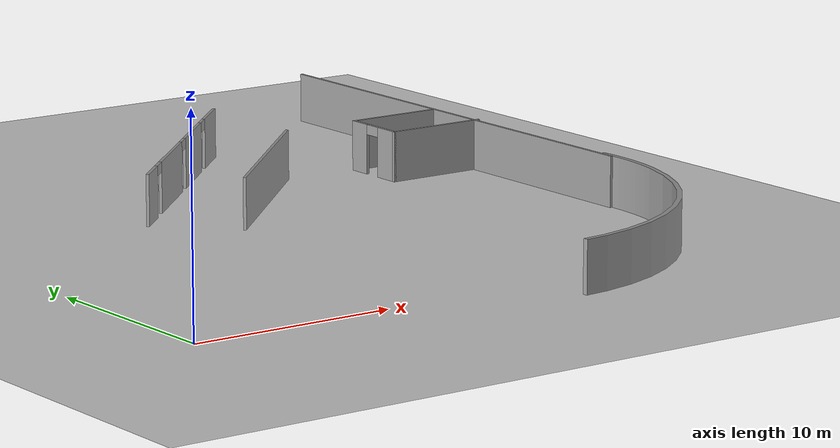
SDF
<sdf version="1.6">
 <world name="default">
  <model name="ground_plane">
   <static>1</static>
   <link name="link">
    <collision name="collision">
     <geometry><plane><normal>0 0 1</normal><size>100 100</size></plane></geometry>
     <surface>
      <contact><collide_bitmask>65535</collide_bitmask></contact>
      <friction><ode><mu>100</mu><mu2>50</mu2></ode></friction>
     </surface>
    </collision>
    <visual name="visual">
     <cast_shadows>0</cast_shadows>
     <geometry><plane><normal>0 0 1</normal><size>100 100</size></plane></geometry>
     <material>
      <script><uri>file://media/materials/scripts/gazebo.material</uri><name>Gazebo/Grey</name></script>
     </material>
    </visual>
   </link>
  </model>
  <model name="Curved_wall_1.25m_clone_0">
   <link name="link_0">
    <inertial>
     <mass>1</mass>
     <inertia>
      <ixx>0.166667</ixx>
      <ixy>0</ixy>
      <ixz>0</ixz>
      <iyy>0.166667</iyy>
      <iyz>0</iyz>
      <izz>0.166667</izz>
     </inertia>
    </inertial>
    <pose>-4.4e-05 -6e-06 0 0 -0 0</pose>
    <visual name="visual">
     <geometry><mesh><uri>meshes/curved wall.dae</uri><scale>1 1 1</scale></mesh></geometry>
     <material>
      <lighting>1</lighting>
      <script><uri>file://media/materials/scripts/gazebo.material</uri><name>Gazebo/Grey</name></script>
      <shader type="pixel"/>
     </material>
    </visual>
    <collision name="collision">
     <geometry><mesh><uri>meshes/curved wall.dae</uri><scale>1 1 1</scale></mesh></geometry>
     <surface>
      <friction>
       <ode><mu>1</mu><mu2>1</mu2><fdir1>0 0 0</fdir1><slip1>0</slip1><slip2>0</slip2></ode>
       <torsional>
        <coefficient>1</coefficient>
        <patch_radius>0</patch_radius>
        <surface_radius>0</surface_radius>
        <use_patch_radius>1</use_patch_radius>
        <ode><slip>0</slip></ode>
       </torsional>
      </friction>
      <bounce><restitution_coefficient>0</restitution_coefficient><threshold>1e+06</threshold></bounce>
      <contact>
       <collide_without_contact>0</collide_without_contact>
       <collide_without_contact_bitmask>1</collide_without_contact_bitmask>
       <collide_bitmask>1</collide_bitmask>
       <ode>
        <soft_cfm>0</soft_cfm>
        <soft_erp>0.2</soft_erp>
        <kp>1e+13</kp>
        <kd>1</kd>
        <max_vel>0.01</max_vel>
        <min_depth>0</min_depth>
       </ode>
       <bullet>
        <split_impulse>1</split_impulse>
        <split_impulse_penetration_threshold>-0.01</split_impulse_penetration_threshold>
        <soft_cfm>0</soft_cfm>
        <soft_erp>0.2</soft_erp>
        <kp>1e+13</kp>
        <kd>1</kd>
       </bullet>
      </contact>
     </surface>
    </collision>
   </link>
   <static>1</static>
   <pose>26.3266 2.14842 1.24993 2.1e-05 -5.6e-05 -1.49215</pose>
  </model>
  <model name="Level_1_with_doors">
   <link name="Wall_34">
    <pose>12.633 -2.43377 0 0 0 -2.35417</pose>
    <visual name="Wall_34_Visual">
     <pose>0 0 1.25 0 -0 0</pose>
     <geometry><box><size>11.1126 0.15 2.5</size></box></geometry>
     <material>
      <script><uri>file://media/materials/scripts/gazebo.material</uri><name>Gazebo/Grey</name></script>
      <ambient>1 1 1 1</ambient>
      <shader type="pixel"/>
     </material>
     <meta><layer>0</layer></meta>
    </visual>
    <collision name="Wall_34_Collision">
     <pose>0 0 1.25 0 -0 0</pose>
     <geometry><box><size>11.1126 0.15 2.5</size></box></geometry>
     <surface>
      <friction>
       <ode><mu>1</mu><mu2>1</mu2><fdir1>0 0 0</fdir1><slip1>0</slip1><slip2>0</slip2></ode>
       <torsional>
        <coefficient>1</coefficient>
        <patch_radius>0</patch_radius>
        <surface_radius>0</surface_radius>
        <use_patch_radius>1</use_patch_radius>
        <ode><slip>0</slip></ode>
       </torsional>
      </friction>
      <bounce><restitution_coefficient>0</restitution_coefficient><threshold>1e+06</threshold></bounce>
      <contact>
       <collide_without_contact>0</collide_without_contact>
       <collide_without_contact_bitmask>1</collide_without_contact_bitmask>
       <collide_bitmask>1</collide_bitmask>
       <ode>
        <soft_cfm>0</soft_cfm>
        <soft_erp>0.2</soft_erp>
        <kp>1e+13</kp>
        <kd>1</kd>
        <max_vel>0.01</max_vel>
        <min_depth>0</min_depth>
       </ode>
       <bullet>
        <split_impulse>1</split_impulse>
        <split_impulse_penetration_threshold>-0.01</split_impulse_penetration_threshold>
        <soft_cfm>0</soft_cfm>
        <soft_erp>0.2</soft_erp>
        <kp>1e+13</kp>
        <kd>1</kd>
       </bullet>
      </contact>
     </surface>
    </collision>
   </link>
   <link name="Wall_36">
    <pose>11.0278 2.45063 0 0 -0 0.785398</pose>
    <visual name="Wall_36_Visual_2">
     <pose>2.43912 0 1.25 0 -0 0</pose>
     <geometry><box><size>3.77284 0.15 2.5</size></box></geometry>
     <material>
      <script><uri>file://media/materials/scripts/gazebo.material</uri><name>Gazebo/Grey</name></script>
      <ambient>1 1 1 1</ambient>
      <shader type="pixel"/>
     </material>
     <meta><layer>0</layer></meta>
    </visual>
    <visual name="Wall_36_Visual_1">
     <pose>-2.69069 0 1.25 0 -0 0</pose>
     <geometry><box><size>4.68677 0.15 2.5</size></box></geometry>
     <material>
      <script><uri>file://media/materials/scripts/gazebo.material</uri><name>Gazebo/Grey</name></script>
      <ambient>1 1 1 1</ambient>
      <shader type="pixel"/>
     </material>
     <meta><layer>0</layer></meta>
    </visual>
    <visual name="Wall_36_Visual_4">
     <pose>-5.48407 0 2.25 0 -0 0</pose>
     <geometry><box><size>0.9 0.15 0.5</size></box></geometry>
     <material>
      <script><uri>file://media/materials/scripts/gazebo.material</uri><name>Gazebo/Grey</name></script>
      <ambient>1 1 1 1</ambient>
      <shader type="pixel"/>
     </material>
     <meta><layer>0</layer></meta>
    </visual>
    <visual name="Wall_36_Visual_3">
     <pose>6.55027 0 1.25 0 -0 0</pose>
     <geometry><box><size>2.64946 0.15 2.5</size></box></geometry>
     <material>
      <script><uri>file://media/materials/scripts/gazebo.material</uri><name>Gazebo/Grey</name></script>
      <ambient>1 1 1 1</ambient>
      <shader type="pixel"/>
     </material>
     <meta><layer>0</layer></meta>
    </visual>
    <visual name="Wall_36_Visual_5">
     <pose>0.102698 0 2.25 0 -0 0</pose>
     <geometry><box><size>0.9 0.15 0.5</size></box></geometry>
     <material>
      <script><uri>file://media/materials/scripts/gazebo.material</uri><name>Gazebo/Grey</name></script>
      <ambient>1 1 1 1</ambient>
      <shader type="pixel"/>
     </material>
     <meta><layer>0</layer></meta>
    </visual>
    <visual name="Wall_36_Visual_6">
     <pose>4.77554 0 2.25 0 -0 0</pose>
     <geometry><box><size>0.9 0.15 0.5</size></box></geometry>
     <material>
      <script><uri>file://media/materials/scripts/gazebo.material</uri><name>Gazebo/Grey</name></script>
      <ambient>1 1 1 1</ambient>
      <shader type="pixel"/>
     </material>
     <meta><layer>0</layer></meta>
    </visual>
    <visual name="Wall_36_Visual_0">
     <pose>-6.90454 0 1.25 0 -0 0</pose>
     <geometry><box><size>1.94093 0.15 2.5</size></box></geometry>
     <material>
      <script><uri>file://media/materials/scripts/gazebo.material</uri><name>Gazebo/Grey</name></script>
      <ambient>1 1 1 1</ambient>
      <shader type="pixel"/>
     </material>
     <meta><layer>0</layer></meta>
    </visual>
    <collision name="Wall_36_Collision_2">
     <pose>2.43912 0 1.25 0 -0 0</pose>
     <geometry><box><size>3.77284 0.15 2.5</size></box></geometry>
     <surface>
      <friction>
       <ode><mu>1</mu><mu2>1</mu2><fdir1>0 0 0</fdir1><slip1>0</slip1><slip2>0</slip2></ode>
       <torsional>
        <coefficient>1</coefficient>
        <patch_radius>0</patch_radius>
        <surface_radius>0</surface_radius>
        <use_patch_radius>1</use_patch_radius>
        <ode><slip>0</slip></ode>
       </torsional>
      </friction>
      <bounce><restitution_coefficient>0</restitution_coefficient><threshold>1e+06</threshold></bounce>
      <contact>
       <collide_without_contact>0</collide_without_contact>
       <collide_without_contact_bitmask>1</collide_without_contact_bitmask>
       <collide_bitmask>1</collide_bitmask>
       <ode>
        <soft_cfm>0</soft_cfm>
        <soft_erp>0.2</soft_erp>
        <kp>1e+13</kp>
        <kd>1</kd>
        <max_vel>0.01</max_vel>
        <min_depth>0</min_depth>
       </ode>
       <bullet>
        <split_impulse>1</split_impulse>
        <split_impulse_penetration_threshold>-0.01</split_impulse_penetration_threshold>
        <soft_cfm>0</soft_cfm>
        <soft_erp>0.2</soft_erp>
        <kp>1e+13</kp>
        <kd>1</kd>
       </bullet>
      </contact>
     </surface>
    </collision>
    <collision name="Wall_36_Collision_0">
     <pose>-6.90454 0 1.25 0 -0 0</pose>
     <geometry><box><size>1.94093 0.15 2.5</size></box></geometry>
     <surface>
      <friction>
       <ode><mu>1</mu><mu2>1</mu2><fdir1>0 0 0</fdir1><slip1>0</slip1><slip2>0</slip2></ode>
       <torsional>
        <coefficient>1</coefficient>
        <patch_radius>0</patch_radius>
        <surface_radius>0</surface_radius>
        <use_patch_radius>1</use_patch_radius>
        <ode><slip>0</slip></ode>
       </torsional>
      </friction>
      <bounce><restitution_coefficient>0</restitution_coefficient><threshold>1e+06</threshold></bounce>
      <contact>
       <collide_without_contact>0</collide_without_contact>
       <collide_without_contact_bitmask>1</collide_without_contact_bitmask>
       <collide_bitmask>1</collide_bitmask>
       <ode>
        <soft_cfm>0</soft_cfm>
        <soft_erp>0.2</soft_erp>
        <kp>1e+13</kp>
        <kd>1</kd>
        <max_vel>0.01</max_vel>
        <min_depth>0</min_depth>
       </ode>
       <bullet>
        <split_impulse>1</split_impulse>
        <split_impulse_penetration_threshold>-0.01</split_impulse_penetration_threshold>
        <soft_cfm>0</soft_cfm>
        <soft_erp>0.2</soft_erp>
        <kp>1e+13</kp>
        <kd>1</kd>
       </bullet>
      </contact>
     </surface>
    </collision>
    <collision name="Wall_36_Collision_1">
     <pose>-2.69069 0 1.25 0 -0 0</pose>
     <geometry><box><size>4.68677 0.15 2.5</size></box></geometry>
     <surface>
      <friction>
       <ode><mu>1</mu><mu2>1</mu2><fdir1>0 0 0</fdir1><slip1>0</slip1><slip2>0</slip2></ode>
       <torsional>
        <coefficient>1</coefficient>
        <patch_radius>0</patch_radius>
        <surface_radius>0</surface_radius>
        <use_patch_radius>1</use_patch_radius>
        <ode><slip>0</slip></ode>
       </torsional>
      </friction>
      <bounce><restitution_coefficient>0</restitution_coefficient><threshold>1e+06</threshold></bounce>
      <contact>
       <collide_without_contact>0</collide_without_contact>
       <collide_without_contact_bitmask>1</collide_without_contact_bitmask>
       <collide_bitmask>1</collide_bitmask>
       <ode>
        <soft_cfm>0</soft_cfm>
        <soft_erp>0.2</soft_erp>
        <kp>1e+13</kp>
        <kd>1</kd>
        <max_vel>0.01</max_vel>
        <min_depth>0</min_depth>
       </ode>
       <bullet>
        <split_impulse>1</split_impulse>
        <split_impulse_penetration_threshold>-0.01</split_impulse_penetration_threshold>
        <soft_cfm>0</soft_cfm>
        <soft_erp>0.2</soft_erp>
        <kp>1e+13</kp>
        <kd>1</kd>
       </bullet>
      </contact>
     </surface>
    </collision>
    <collision name="Wall_36_Collision_5">
     <pose>0.102698 0 2.25 0 -0 0</pose>
     <geometry><box><size>0.9 0.15 0.5</size></box></geometry>
     <surface>
      <friction>
       <ode><mu>1</mu><mu2>1</mu2><fdir1>0 0 0</fdir1><slip1>0</slip1><slip2>0</slip2></ode>
       <torsional>
        <coefficient>1</coefficient>
        <patch_radius>0</patch_radius>
        <surface_radius>0</surface_radius>
        <use_patch_radius>1</use_patch_radius>
        <ode><slip>0</slip></ode>
       </torsional>
      </friction>
      <bounce><restitution_coefficient>0</restitution_coefficient><threshold>1e+06</threshold></bounce>
      <contact>
       <collide_without_contact>0</collide_without_contact>
       <collide_without_contact_bitmask>1</collide_without_contact_bitmask>
       <collide_bitmask>1</collide_bitmask>
       <ode>
        <soft_cfm>0</soft_cfm>
        <soft_erp>0.2</soft_erp>
        <kp>1e+13</kp>
        <kd>1</kd>
        <max_vel>0.01</max_vel>
        <min_depth>0</min_depth>
       </ode>
       <bullet>
        <split_impulse>1</split_impulse>
        <split_impulse_penetration_threshold>-0.01</split_impulse_penetration_threshold>
        <soft_cfm>0</soft_cfm>
        <soft_erp>0.2</soft_erp>
        <kp>1e+13</kp>
        <kd>1</kd>
       </bullet>
      </contact>
     </surface>
    </collision>
    <collision name="Wall_36_Collision_6">
     <pose>4.77554 0 2.25 0 -0 0</pose>
     <geometry><box><size>0.9 0.15 0.5</size></box></geometry>
     <surface>
      <friction>
       <ode><mu>1</mu><mu2>1</mu2><fdir1>0 0 0</fdir1><slip1>0</slip1><slip2>0</slip2></ode>
       <torsional>
        <coefficient>1</coefficient>
        <patch_radius>0</patch_radius>
        <surface_radius>0</surface_radius>
        <use_patch_radius>1</use_patch_radius>
        <ode><slip>0</slip></ode>
       </torsional>
      </friction>
      <bounce><restitution_coefficient>0</restitution_coefficient><threshold>1e+06</threshold></bounce>
      <contact>
       <collide_without_contact>0</collide_without_contact>
       <collide_without_contact_bitmask>1</collide_without_contact_bitmask>
       <collide_bitmask>1</collide_bitmask>
       <ode>
        <soft_cfm>0</soft_cfm>
        <soft_erp>0.2</soft_erp>
        <kp>1e+13</kp>
        <kd>1</kd>
        <max_vel>0.01</max_vel>
        <min_depth>0</min_depth>
       </ode>
       <bullet>
        <split_impulse>1</split_impulse>
        <split_impulse_penetration_threshold>-0.01</split_impulse_penetration_threshold>
        <soft_cfm>0</soft_cfm>
        <soft_erp>0.2</soft_erp>
        <kp>1e+13</kp>
        <kd>1</kd>
       </bullet>
      </contact>
     </surface>
    </collision>
    <collision name="Wall_36_Collision_3">
     <pose>6.55027 0 1.25 0 -0 0</pose>
     <geometry><box><size>2.64946 0.15 2.5</size></box></geometry>
     <surface>
      <friction>
       <ode><mu>1</mu><mu2>1</mu2><fdir1>0 0 0</fdir1><slip1>0</slip1><slip2>0</slip2></ode>
       <torsional>
        <coefficient>1</coefficient>
        <patch_radius>0</patch_radius>
        <surface_radius>0</surface_radius>
        <use_patch_radius>1</use_patch_radius>
        <ode><slip>0</slip></ode>
       </torsional>
      </friction>
      <bounce><restitution_coefficient>0</restitution_coefficient><threshold>1e+06</threshold></bounce>
      <contact>
       <collide_without_contact>0</collide_without_contact>
       <collide_without_contact_bitmask>1</collide_without_contact_bitmask>
       <collide_bitmask>1</collide_bitmask>
       <ode>
        <soft_cfm>0</soft_cfm>
        <soft_erp>0.2</soft_erp>
        <kp>1e+13</kp>
        <kd>1</kd>
        <max_vel>0.01</max_vel>
        <min_depth>0</min_depth>
       </ode>
       <bullet>
        <split_impulse>1</split_impulse>
        <split_impulse_penetration_threshold>-0.01</split_impulse_penetration_threshold>
        <soft_cfm>0</soft_cfm>
        <soft_erp>0.2</soft_erp>
        <kp>1e+13</kp>
        <kd>1</kd>
       </bullet>
      </contact>
     </surface>
    </collision>
    <collision name="Wall_36_Collision_4">
     <pose>-5.48407 0 2.25 0 -0 0</pose>
     <geometry><box><size>0.9 0.15 0.5</size></box></geometry>
     <surface>
      <friction>
       <ode><mu>1</mu><mu2>1</mu2><fdir1>0 0 0</fdir1><slip1>0</slip1><slip2>0</slip2></ode>
       <torsional>
        <coefficient>1</coefficient>
        <patch_radius>0</patch_radius>
        <surface_radius>0</surface_radius>
        <use_patch_radius>1</use_patch_radius>
        <ode><slip>0</slip></ode>
       </torsional>
      </friction>
      <bounce><restitution_coefficient>0</restitution_coefficient><threshold>1e+06</threshold></bounce>
      <contact>
       <collide_without_contact>0</collide_without_contact>
       <collide_without_contact_bitmask>1</collide_without_contact_bitmask>
       <collide_bitmask>1</collide_bitmask>
       <ode>
        <soft_cfm>0</soft_cfm>
        <soft_erp>0.2</soft_erp>
        <kp>1e+13</kp>
        <kd>1</kd>
        <max_vel>0.01</max_vel>
        <min_depth>0</min_depth>
       </ode>
       <bullet>
        <split_impulse>1</split_impulse>
        <split_impulse_penetration_threshold>-0.01</split_impulse_penetration_threshold>
        <soft_cfm>0</soft_cfm>
        <soft_erp>0.2</soft_erp>
        <kp>1e+13</kp>
        <kd>1</kd>
       </bullet>
      </contact>
     </surface>
    </collision>
   </link>
   <link name="Wall_5">
    <pose>25.4175 0.086367 0 0 0 -1.5708</pose>
    <visual name="Wall_5_Visual">
     <pose>0 0 1.25 0 -0 0</pose>
     <geometry><box><size>25.75 0.15 2.5</size></box></geometry>
     <material>
      <script><uri>file://media/materials/scripts/gazebo.material</uri><name>Gazebo/Grey</name></script>
      <ambient>1 1 1 1</ambient>
      <shader type="pixel"/>
     </material>
     <meta><layer>0</layer></meta>
    </visual>
    <collision name="Wall_5_Collision">
     <pose>0 0 1.25 0 -0 0</pose>
     <geometry><box><size>25.75 0.15 2.5</size></box></geometry>
     <surface>
      <friction>
       <ode><mu>1</mu><mu2>1</mu2><fdir1>0 0 0</fdir1><slip1>0</slip1><slip2>0</slip2></ode>
       <torsional>
        <coefficient>1</coefficient>
        <patch_radius>0</patch_radius>
        <surface_radius>0</surface_radius>
        <use_patch_radius>1</use_patch_radius>
        <ode><slip>0</slip></ode>
       </torsional>
      </friction>
      <bounce><restitution_coefficient>0</restitution_coefficient><threshold>1e+06</threshold></bounce>
      <contact>
       <collide_without_contact>0</collide_without_contact>
       <collide_without_contact_bitmask>1</collide_without_contact_bitmask>
       <collide_bitmask>1</collide_bitmask>
       <ode>
        <soft_cfm>0</soft_cfm>
        <soft_erp>0.2</soft_erp>
        <kp>1e+13</kp>
        <kd>1</kd>
        <max_vel>0.01</max_vel>
        <min_depth>0</min_depth>
       </ode>
       <bullet>
        <split_impulse>1</split_impulse>
        <split_impulse_penetration_threshold>-0.01</split_impulse_penetration_threshold>
        <soft_cfm>0</soft_cfm>
        <soft_erp>0.2</soft_erp>
        <kp>1e+13</kp>
        <kd>1</kd>
       </bullet>
      </contact>
     </surface>
    </collision>
   </link>
   <link name="Wall_65">
    <pose>23.0736 -1.99346 0 0 -0 3.14159</pose>
    <visual name="Wall_65_Visual">
     <pose>0 0 1.25 0 -0 0</pose>
     <geometry><box><size>5.25 0.15 2.5</size></box></geometry>
     <material>
      <script><uri>file://media/materials/scripts/gazebo.material</uri><name>Gazebo/Grey</name></script>
      <ambient>1 1 1 1</ambient>
      <shader type="pixel"/>
     </material>
     <meta><layer>0</layer></meta>
    </visual>
    <collision name="Wall_65_Collision">
     <pose>0 0 1.25 0 -0 0</pose>
     <geometry><box><size>5.25 0.15 2.5</size></box></geometry>
     <surface>
      <friction>
       <ode><mu>1</mu><mu2>1</mu2><fdir1>0 0 0</fdir1><slip1>0</slip1><slip2>0</slip2></ode>
       <torsional>
        <coefficient>1</coefficient>
        <patch_radius>0</patch_radius>
        <surface_radius>0</surface_radius>
        <use_patch_radius>1</use_patch_radius>
        <ode><slip>0</slip></ode>
       </torsional>
      </friction>
      <bounce><restitution_coefficient>0</restitution_coefficient><threshold>1e+06</threshold></bounce>
      <contact>
       <collide_without_contact>0</collide_without_contact>
       <collide_without_contact_bitmask>1</collide_without_contact_bitmask>
       <collide_bitmask>1</collide_bitmask>
       <ode>
        <soft_cfm>0</soft_cfm>
        <soft_erp>0.2</soft_erp>
        <kp>1e+13</kp>
        <kd>1</kd>
        <max_vel>0.01</max_vel>
        <min_depth>0</min_depth>
       </ode>
       <bullet>
        <split_impulse>1</split_impulse>
        <split_impulse_penetration_threshold>-0.01</split_impulse_penetration_threshold>
        <soft_cfm>0</soft_cfm>
        <soft_erp>0.2</soft_erp>
        <kp>1e+13</kp>
        <kd>1</kd>
       </bullet>
      </contact>
     </surface>
    </collision>
   </link>
   <link name="Wall_66">
    <pose>20.5236 -0.31846 0 0 -0 1.5708</pose>
    <visual name="Wall_66_Visual_1">
     <pose>1.14926 0 1.25 0 -0 0</pose>
     <geometry><box><size>1.20148 0.15 2.5</size></box></geometry>
     <material>
      <script><uri>file://media/materials/scripts/gazebo.material</uri><name>Gazebo/Grey</name></script>
      <ambient>1 1 1 1</ambient>
      <shader type="pixel"/>
     </material>
     <meta><layer>0</layer></meta>
    </visual>
    <visual name="Wall_66_Visual_2">
     <pose>0.098515 0 2.25 0 -0 0</pose>
     <geometry><box><size>0.9 0.15 0.5</size></box></geometry>
     <material>
      <script><uri>file://media/materials/scripts/gazebo.material</uri><name>Gazebo/Grey</name></script>
      <ambient>1 1 1 1</ambient>
      <shader type="pixel"/>
     </material>
     <meta><layer>0</layer></meta>
    </visual>
    <visual name="Wall_66_Visual_0">
     <pose>-1.05074 0 1.25 0 -0 0</pose>
     <geometry><box><size>1.39851 0.15 2.5</size></box></geometry>
     <material>
      <script><uri>file://media/materials/scripts/gazebo.material</uri><name>Gazebo/Grey</name></script>
      <ambient>1 1 1 1</ambient>
      <shader type="pixel"/>
     </material>
     <meta><layer>0</layer></meta>
    </visual>
    <collision name="Wall_66_Collision_1">
     <pose>1.14926 0 1.25 0 -0 0</pose>
     <geometry><box><size>1.20148 0.15 2.5</size></box></geometry>
     <surface>
      <friction>
       <ode><mu>1</mu><mu2>1</mu2><fdir1>0 0 0</fdir1><slip1>0</slip1><slip2>0</slip2></ode>
       <torsional>
        <coefficient>1</coefficient>
        <patch_radius>0</patch_radius>
        <surface_radius>0</surface_radius>
        <use_patch_radius>1</use_patch_radius>
        <ode><slip>0</slip></ode>
       </torsional>
      </friction>
      <bounce><restitution_coefficient>0</restitution_coefficient><threshold>1e+06</threshold></bounce>
      <contact>
       <collide_without_contact>0</collide_without_contact>
       <collide_without_contact_bitmask>1</collide_without_contact_bitmask>
       <collide_bitmask>1</collide_bitmask>
       <ode>
        <soft_cfm>0</soft_cfm>
        <soft_erp>0.2</soft_erp>
        <kp>1e+13</kp>
        <kd>1</kd>
        <max_vel>0.01</max_vel>
        <min_depth>0</min_depth>
       </ode>
       <bullet>
        <split_impulse>1</split_impulse>
        <split_impulse_penetration_threshold>-0.01</split_impulse_penetration_threshold>
        <soft_cfm>0</soft_cfm>
        <soft_erp>0.2</soft_erp>
        <kp>1e+13</kp>
        <kd>1</kd>
       </bullet>
      </contact>
     </surface>
    </collision>
    <collision name="Wall_66_Collision_0">
     <pose>-1.05074 0 1.25 0 -0 0</pose>
     <geometry><box><size>1.39851 0.15 2.5</size></box></geometry>
     <surface>
      <friction>
       <ode><mu>1</mu><mu2>1</mu2><fdir1>0 0 0</fdir1><slip1>0</slip1><slip2>0</slip2></ode>
       <torsional>
        <coefficient>1</coefficient>
        <patch_radius>0</patch_radius>
        <surface_radius>0</surface_radius>
        <use_patch_radius>1</use_patch_radius>
        <ode><slip>0</slip></ode>
       </torsional>
      </friction>
      <bounce><restitution_coefficient>0</restitution_coefficient><threshold>1e+06</threshold></bounce>
      <contact>
       <collide_without_contact>0</collide_without_contact>
       <collide_without_contact_bitmask>1</collide_without_contact_bitmask>
       <collide_bitmask>1</collide_bitmask>
       <ode>
        <soft_cfm>0</soft_cfm>
        <soft_erp>0.2</soft_erp>
        <kp>1e+13</kp>
        <kd>1</kd>
        <max_vel>0.01</max_vel>
        <min_depth>0</min_depth>
       </ode>
       <bullet>
        <split_impulse>1</split_impulse>
        <split_impulse_penetration_threshold>-0.01</split_impulse_penetration_threshold>
        <soft_cfm>0</soft_cfm>
        <soft_erp>0.2</soft_erp>
        <kp>1e+13</kp>
        <kd>1</kd>
       </bullet>
      </contact>
     </surface>
    </collision>
    <collision name="Wall_66_Collision_2">
     <pose>0.098515 0 2.25 0 -0 0</pose>
     <geometry><box><size>0.9 0.15 0.5</size></box></geometry>
     <surface>
      <friction>
       <ode><mu>1</mu><mu2>1</mu2><fdir1>0 0 0</fdir1><slip1>0</slip1><slip2>0</slip2></ode>
       <torsional>
        <coefficient>1</coefficient>
        <patch_radius>0</patch_radius>
        <surface_radius>0</surface_radius>
        <use_patch_radius>1</use_patch_radius>
        <ode><slip>0</slip></ode>
       </torsional>
      </friction>
      <bounce><restitution_coefficient>0</restitution_coefficient><threshold>1e+06</threshold></bounce>
      <contact>
       <collide_without_contact>0</collide_without_contact>
       <collide_without_contact_bitmask>1</collide_without_contact_bitmask>
       <collide_bitmask>1</collide_bitmask>
       <ode>
        <soft_cfm>0</soft_cfm>
        <soft_erp>0.2</soft_erp>
        <kp>1e+13</kp>
        <kd>1</kd>
        <max_vel>0.01</max_vel>
        <min_depth>0</min_depth>
       </ode>
       <bullet>
        <split_impulse>1</split_impulse>
        <split_impulse_penetration_threshold>-0.01</split_impulse_penetration_threshold>
        <soft_cfm>0</soft_cfm>
        <soft_erp>0.2</soft_erp>
        <kp>1e+13</kp>
        <kd>1</kd>
       </bullet>
      </contact>
     </surface>
    </collision>
   </link>
   <link name="Wall_67">
    <pose>22.9486 1.35654 0 0 -0 0</pose>
    <visual name="Wall_67_Visual">
     <pose>0 0 1.25 0 -0 0</pose>
     <geometry><box><size>5 0.15 2.5</size></box></geometry>
     <material>
      <script><uri>file://media/materials/scripts/gazebo.material</uri><name>Gazebo/Grey</name></script>
      <ambient>1 1 1 1</ambient>
      <shader type="pixel"/>
     </material>
     <meta><layer>0</layer></meta>
    </visual>
    <collision name="Wall_67_Collision">
     <pose>0 0 1.25 0 -0 0</pose>
     <geometry><box><size>5 0.15 2.5</size></box></geometry>
     <surface>
      <friction>
       <ode><mu>1</mu><mu2>1</mu2><fdir1>0 0 0</fdir1><slip1>0</slip1><slip2>0</slip2></ode>
       <torsional>
        <coefficient>1</coefficient>
        <patch_radius>0</patch_radius>
        <surface_radius>0</surface_radius>
        <use_patch_radius>1</use_patch_radius>
        <ode><slip>0</slip></ode>
       </torsional>
      </friction>
      <bounce><restitution_coefficient>0</restitution_coefficient><threshold>1e+06</threshold></bounce>
      <contact>
       <collide_without_contact>0</collide_without_contact>
       <collide_without_contact_bitmask>1</collide_without_contact_bitmask>
       <collide_bitmask>1</collide_bitmask>
       <ode>
        <soft_cfm>0</soft_cfm>
        <soft_erp>0.2</soft_erp>
        <kp>1e+13</kp>
        <kd>1</kd>
        <max_vel>0.01</max_vel>
        <min_depth>0</min_depth>
       </ode>
       <bullet>
        <split_impulse>1</split_impulse>
        <split_impulse_penetration_threshold>-0.01</split_impulse_penetration_threshold>
        <soft_cfm>0</soft_cfm>
        <soft_erp>0.2</soft_erp>
        <kp>1e+13</kp>
        <kd>1</kd>
       </bullet>
      </contact>
     </surface>
    </collision>
   </link>
   <static>1</static>
   <pose>4.79959 22.5424 0 0 -0 0</pose>
  </model>
 </world>
</sdf>
